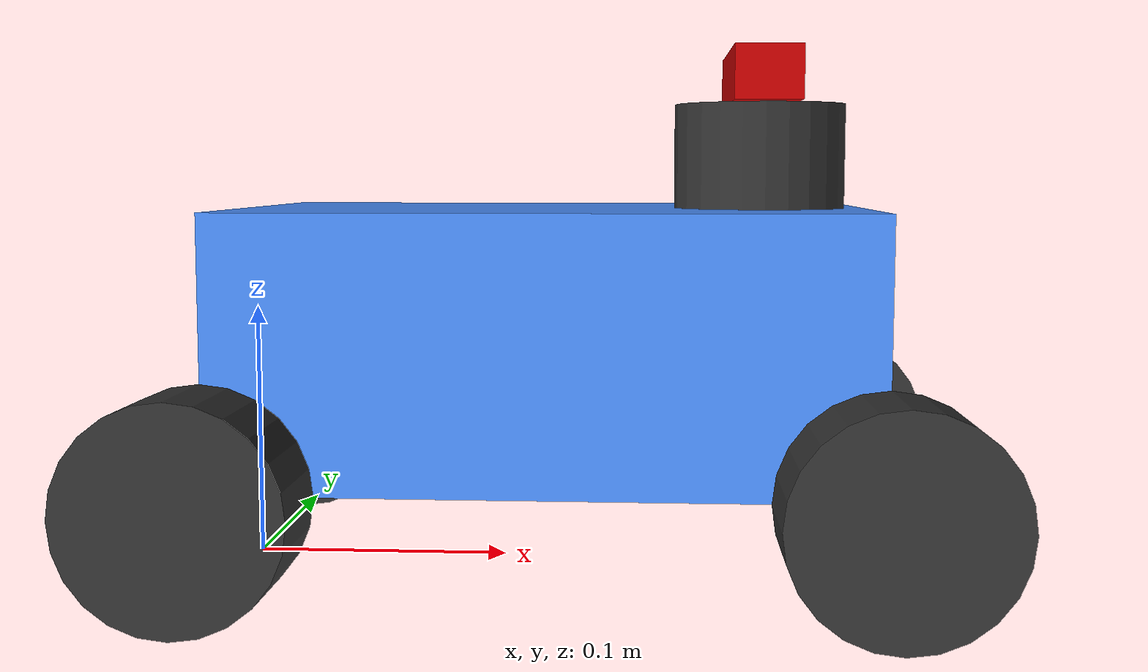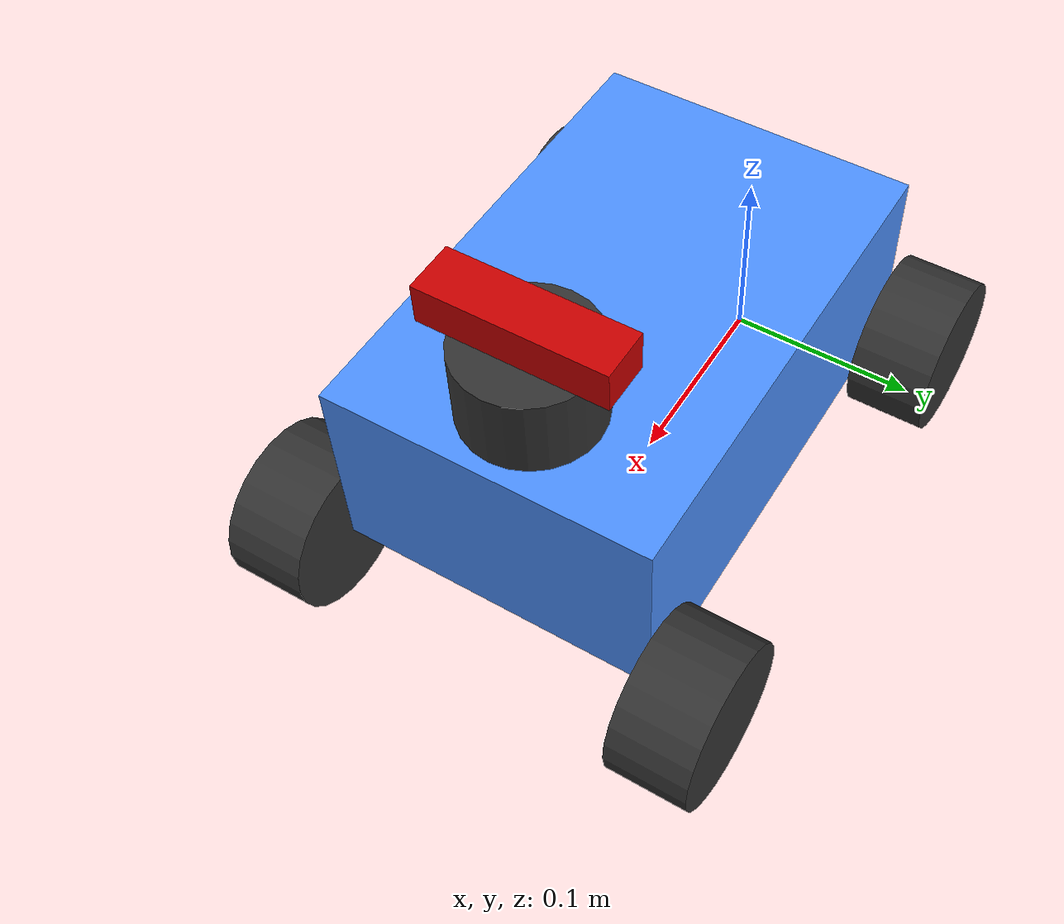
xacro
<?xml version="1.0"?>
<!-- Gazebo-enhanced version of F1Tenth ego racecar -->
<robot xmlns:xacro="http://www.ros.org/wiki/xacro" name="racecar">

  <xacro:arg name="use_ros2_control" default="false"/>

  <!-- Importar propiedades del archivo original -->
  <xacro:property name="wheelbase" value="0.24" />
  <xacro:property name="width" value="0.16" />
  <xacro:property name="height" value="0.1" />
  <xacro:property name="ground_offset" value="0.04" />
  <xacro:property name="wheel_radius" value="0.04" />
  <xacro:property name="wheel_length" value="0.04" />
  <xacro:property name="laser_distance_from_base_link" value="0.2" />
  <xacro:property name="laser_height" value="0.04" />
  <xacro:property name="laser_radius" value="0.033" />
  <xacro:property name="car_name" value="ego_racecar" />

  <!-- Propiedades de la cámara -->
  <xacro:property name="camera_width" value="0.09" />
  <xacro:property name="camera_height" value="0.02" />
  <xacro:property name="camera_length" value="0.025" />
  <xacro:property name="camera_offset_z" value="0.01" />  <!-- Altura sobre el LIDAR -->

  <!-- Propiedades físicas para Gazebo -->
  <xacro:property name="chassis_mass" value="4.0" />
  <xacro:property name="wheel_mass" value="0.05" />
  <xacro:property name="wheel_mu1" value="0.8" />
  <xacro:property name="wheel_mu2" value="0.8" />

  <!-- Materiales -->
  <material name="black">
    <color rgba="0.2 0.2 0.2 1."/>
  </material>
  <material name="blue">
    <color rgba="0.3 0.57 1. 1."/>
  </material>
  <material name="red">
    <color rgba="0.8 0.0 0.0 1."/>
  </material>

  <!-- BASE LINK con elementos visual, collision e inertial -->
  <link name="${car_name}/base_link">
    <!-- Visual (original) -->
    <visual>
      <origin xyz="${wheelbase/2} 0 ${ground_offset+height/2}"/>
      <geometry>
        <box size="${wheelbase} ${width} ${height}"/>
      </geometry>
      <material name="blue"/>
    </visual>

    <!-- Collision (nuevo para Gazebo) -->
    <collision>
      <origin xyz="${wheelbase/2} 0 ${ground_offset+height/2}"/>
      <geometry>
        <box size="${wheelbase} ${width} ${height}"/>
      </geometry>
    </collision>

    <!-- Inertial (nuevo para Gazebo) -->
    <inertial>
      <origin xyz="0 0 ${ground_offset+height/2}"/>
      <mass value="${chassis_mass}"/>
      <inertia ixx="0.010" ixy="0" ixz="0" iyy="0.025" iyz="0" izz="0.03"/>
    </inertial>
  </link>

  <!-- LASER MODEL -->
  <joint name="base_to_laser_model" type="fixed">
    <parent link="${car_name}/base_link"/>
    <child link="${car_name}/laser_model"/>
    <origin xyz="${laser_distance_from_base_link} 0 ${ground_offset+height+(laser_height/2)}"/>
  </joint>

  <link name="${car_name}/laser_model">
    <visual>
      <geometry>
        <cylinder radius="${laser_radius}" length="${laser_height}"/>
      </geometry>
      <material name="black"/>
    </visual>
    <!-- Collision para LIDAR -->
    <collision>
      <geometry>
        <cylinder radius="${laser_radius}" length="${laser_height}"/>
      </geometry>
    </collision>
    <!-- Inertial para LIDAR -->
    <inertial>
      <mass value="0.1"/>
      <inertia ixx="0.0001" ixy="0" ixz="0" iyy="0.0001" iyz="0" izz="0.0001"/>
    </inertial>
  </link>

  <!-- CÁMARA ENCIMA DEL LIDAR -->
  <joint name="laser_to_camera" type="fixed">
    <parent link="${car_name}/laser_model"/>
    <child link="${car_name}/camera_link"/>
    <origin xyz="0 0 ${(laser_height/2) + camera_offset_z}" rpy="0 0 0"/>
  </joint>

  <link name="${car_name}/camera_link">
    <visual>
      <geometry>
        <box size="${camera_length} ${camera_width} ${camera_height}"/>
      </geometry>
      <material name="red"/>
    </visual>
    <collision>
      <geometry>
        <box size="${camera_length} ${camera_width} ${camera_height}"/>
      </geometry>
    </collision>
    <inertial>
      <mass value="0.05"/>
      <inertia ixx="0.00001" ixy="0" ixz="0" iyy="0.00001" iyz="0" izz="0.00001"/>
    </inertial>
  </link>

  <!-- Frame óptico de la cámara (para las imágenes) -->
  <joint name="camera_to_optical" type="fixed">
    <parent link="${car_name}/camera_link"/>
    <child link="${car_name}/camera_optical_frame"/>
    <origin xyz="0 0 0" rpy="-1.5708 0 -1.5708"/>  <!-- Rotación estándar ROS para cámaras -->
  </joint>

  <link name="${car_name}/camera_optical_frame"/>

  <!-- RUEDAS TRASERAS - Cambiamos de fixed a continuous para Gazebo -->

  <!-- Rueda trasera izquierda -->
  <joint name="base_to_back_left_wheel" type="continuous">  <!-- Era "fixed" -->
    <parent link="${car_name}/base_link"/>
    <child link="${car_name}/back_left_wheel"/>
    <origin xyz="0 ${(wheel_length+width)/2} ${wheel_radius}"/>
    <axis xyz="0 1 0"/>  <!-- Eje de rotación -->
    <dynamics damping="0.5" friction="0.3"/>
  </joint>

  <link name="${car_name}/back_left_wheel">
    <visual>
      <geometry>
        <cylinder radius="${wheel_radius}" length="${wheel_length}"/>
      </geometry>
      <material name="black"/>
      <origin rpy="${pi/2} 0 0"/>
    </visual>
    <collision>
      <geometry>
        <cylinder radius="${wheel_radius}" length="${wheel_length}"/>
      </geometry>
      <origin rpy="${pi/2} 0 0"/>
    </collision>
    <inertial>
      <mass value="${wheel_mass}"/>
      <origin rpy="${pi/2} 0 0"/>
      <inertia ixx="0.001" ixy="0" ixz="0" iyy="0.001" iyz="0" izz="0.001"/>
    </inertial>
  </link>

  <!-- Rueda trasera derecha -->
  <joint name="base_to_back_right_wheel" type="continuous">  <!-- Era "fixed" -->
    <parent link="${car_name}/base_link"/>
    <child link="${car_name}/back_right_wheel"/>
    <origin xyz="0 ${-(wheel_length+width)/2} ${wheel_radius}"/>
    <axis xyz="0 1 0"/>
    <dynamics damping="0.5" friction="0.3"/>
  </joint>

  <link name="${car_name}/back_right_wheel">
    <visual>
      <geometry>
        <cylinder radius="${wheel_radius}" length="${wheel_length}"/>
      </geometry>
      <material name="black"/>
      <origin rpy="${pi/2} 0 0"/>
    </visual>
    <collision>
      <geometry>
        <cylinder radius="${wheel_radius}" length="${wheel_length}"/>
      </geometry>
      <origin rpy="${pi/2} 0 0"/>
    </collision>
    <inertial>
      <mass value="${wheel_mass}"/>
      <origin rpy="${pi/2} 0 0"/>
      <inertia ixx="0.001" ixy="0" ixz="0" iyy="0.001" iyz="0" izz="0.001"/>
    </inertial>
  </link>

  <!-- RUEDAS DELANTERAS CON DIRECCIÓN ACKERMANN -->

  <!-- Hinge delantero izquierdo - Cambiamos de fixed a revolute para dirección -->
  <joint name="base_to_front_left_hinge" type="revolute">  <!-- Era "fixed" -->
    <parent link="${car_name}/base_link"/>
    <child link="${car_name}/front_left_hinge"/>
    <origin xyz="${wheelbase} ${(wheel_length+width)/2} ${wheel_radius}"/>
    <axis xyz="0 0 1"/>  <!-- Eje de dirección (vertical) -->
    <limit lower="-0.7854" upper="0.7854" effort="100" velocity="10"/>
    <dynamics damping="10.0" friction="5.0"/>
  </joint>

  <link name="${car_name}/front_left_hinge">
    <inertial>
      <mass value="0.01"/>
      <inertia ixx="0.0001" ixy="0" ixz="0" iyy="0.0001" iyz="0" izz="0.0001"/>
    </inertial>
  </link>

  <!-- Rueda delantera izquierda -->
  <joint name="front_left_hinge_to_wheel" type="continuous">
    <parent link="${car_name}/front_left_hinge"/>
    <child link="${car_name}/front_left_wheel"/>
    <axis xyz="0 1 0"/>  <!-- Eje de rotación de rueda -->
    <dynamics damping="0.5" friction="0.3"/>
  </joint>

  <link name="${car_name}/front_left_wheel">
    <visual>
      <geometry>
        <cylinder radius="${wheel_radius}" length="${wheel_length}"/>
      </geometry>
      <material name="black"/>
      <origin rpy="${pi/2} 0 0"/>
    </visual>
    <collision>
      <geometry>
        <cylinder radius="${wheel_radius}" length="${wheel_length}"/>
      </geometry>
      <origin rpy="${pi/2} 0 0"/>
    </collision>
    <inertial>
      <mass value="${wheel_mass}"/>
      <origin rpy="${pi/2} 0 0"/>
      <inertia ixx="0.001" ixy="0" ixz="0" iyy="0.001" iyz="0" izz="0.001"/>
    </inertial>
  </link>

  <!-- Hinge delantero derecho -->
  <joint name="base_to_front_right_hinge" type="revolute">  <!-- Era "fixed" -->
    <parent link="${car_name}/base_link"/>
    <child link="${car_name}/front_right_hinge"/>
    <origin xyz="${wheelbase} ${-(wheel_length+width)/2} ${wheel_radius}"/>
    <axis xyz="0 0 1"/>
    <limit lower="-0.7854" upper="0.7854" effort="100" velocity="10"/>
    <dynamics damping="10.0" friction="5.0"/>
  </joint>

  <link name="${car_name}/front_right_hinge">
    <inertial>
      <mass value="0.01"/>
      <inertia ixx="0.0001" ixy="0" ixz="0" iyy="0.0001" iyz="0" izz="0.0001"/>
    </inertial>
  </link>

  <!-- Rueda delantera derecha -->
  <joint name="front_right_hinge_to_wheel" type="continuous">
    <parent link="${car_name}/front_right_hinge"/>
    <child link="${car_name}/front_right_wheel"/>
    <axis xyz="0 1 0"/>
    <dynamics damping="0.5" friction="0.3"/>
  </joint>

  <link name="${car_name}/front_right_wheel">
    <visual>
      <geometry>
        <cylinder radius="${wheel_radius}" length="${wheel_length}"/>
      </geometry>
      <material name="black"/>
      <origin rpy="${pi/2} 0 0"/>
    </visual>
    <collision>
      <geometry>
        <cylinder radius="${wheel_radius}" length="${wheel_length}"/>
      </geometry>
      <origin rpy="${pi/2} 0 0"/>
    </collision>
    <inertial>
      <mass value="${wheel_mass}"/>
      <origin rpy="${pi/2} 0 0"/>
      <inertia ixx="0.001" ixy="0" ixz="0" iyy="0.001" iyz="0" izz="0.001"/>
    </inertial>
  </link>

  <!-- INCLUIR ROS2_CONTROL SI SE ESPECIFICA -->
  <xacro:if value="$(arg use_ros2_control)">
    <xacro:include filename="$(find f1tenth_gym_ros)/launch/ros2_control_ackermann.xacro"/>
  </xacro:if>

  <!-- Plugin de Gazebo para publicar joint states (sin ros2_control) -->
  <xacro:unless value="$(arg use_ros2_control)">
    <gazebo>
      <plugin name="joint_state_publisher" filename="libgazebo_ros_joint_state_publisher.so">
        <ros>
          <namespace></namespace>
          <remapping>joint_states:=joint_states</remapping>
        </ros>
        <update_rate>50</update_rate>
        <joint_name>base_to_back_left_wheel</joint_name>
        <joint_name>base_to_back_right_wheel</joint_name>
        <joint_name>front_left_hinge_to_wheel</joint_name>
        <joint_name>front_right_hinge_to_wheel</joint_name>
        <joint_name>base_to_front_left_hinge</joint_name>
        <joint_name>base_to_front_right_hinge</joint_name>
      </plugin>
    </gazebo>
  </xacro:unless>

  <!-- PROPIEDADES DE GAZEBO -->
  <gazebo reference="${car_name}/base_link">
    <material>Gazebo/Blue</material>
    <mu1>0.2</mu1>
    <mu2>0.2</mu2>
  </gazebo>

  <gazebo reference="${car_name}/back_left_wheel">
    <material>Gazebo/White</material>
    <mu1>${wheel_mu1}</mu1>
    <mu2>${wheel_mu2}</mu2>
  </gazebo>

  <gazebo reference="${car_name}/back_right_wheel">
    <material>Gazebo/White</material>
    <mu1>${wheel_mu1}</mu1>
    <mu2>${wheel_mu2}</mu2>
  </gazebo>

  <gazebo reference="${car_name}/front_left_wheel">
    <material>Gazebo/White</material>
    <mu1>${wheel_mu1}</mu1>
    <mu2>${wheel_mu2}</mu2>
  </gazebo>

  <gazebo reference="${car_name}/front_right_wheel">
    <material>Gazebo/White</material>
    <mu1>${wheel_mu1}</mu1>
    <mu2>${wheel_mu2}</mu2>
  </gazebo>

  <gazebo reference="${car_name}/laser_model">
    <material>Gazebo/Black</material>
  </gazebo>

  <!-- Propiedades de Gazebo para la cámara depth -->
  <gazebo reference="${car_name}/camera_link">
    <material>Gazebo/Red</material>
    <sensor name="depth_camera" type="depth">
      <pose>0 0 0 0 0 0</pose>
      <visualize>true</visualize>
      <update_rate>10</update_rate>
      <camera>
        <horizontal_fov>1.089</horizontal_fov>
        <image>
          <format>R8G8B8</format>
          <width>640</width>
          <height>480</height>
        </image>
        <clip>
          <near>0.05</near>
          <far>8.0</far>
        </clip>
      </camera>
      <plugin name="depth_camera_controller" filename="libgazebo_ros_camera.so">
        <ros>
          <namespace></namespace>
          <remapping>image_raw:=image_raw</remapping>
          <remapping>image_depth:=depth/image_raw</remapping>
          <remapping>camera_info:=camera_info</remapping>
          <remapping>camera_info_depth:=depth/camera_info</remapping>
          <remapping>points:=depth/points</remapping>
        </ros>
        <camera_name>camera</camera_name>
        <frame_name>ego_racecar/camera_optical_frame</frame_name>
        <hack_baseline>0.07</hack_baseline>
        <min_depth>0.1</min_depth>
        <max_depth>100.0</max_depth>
      </plugin>
    </sensor>
  </gazebo>

</robot>
